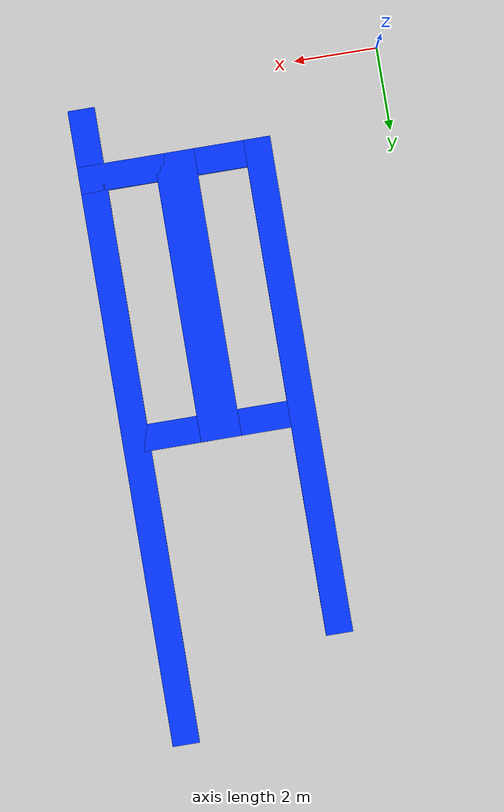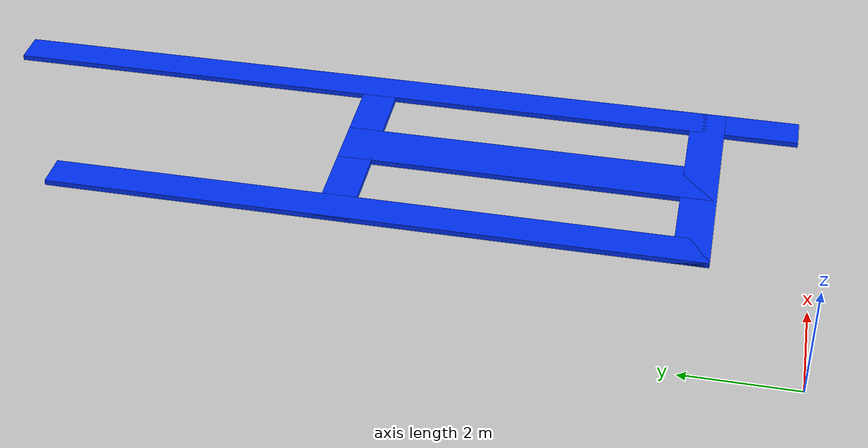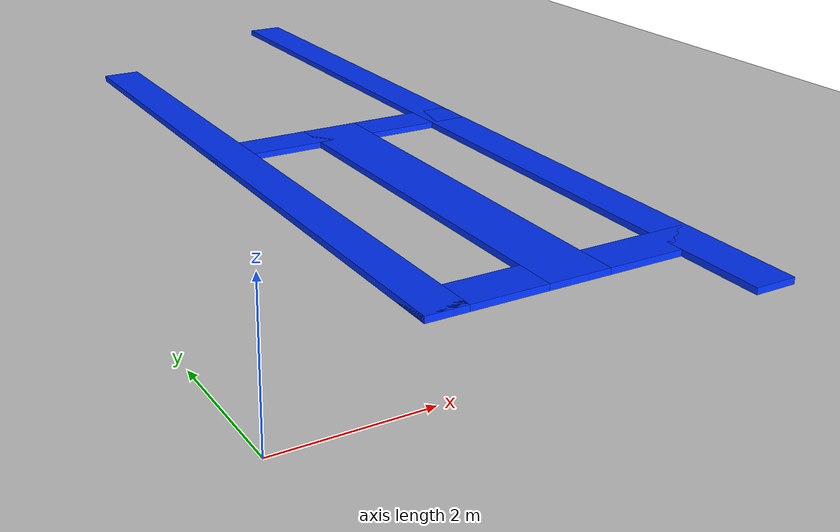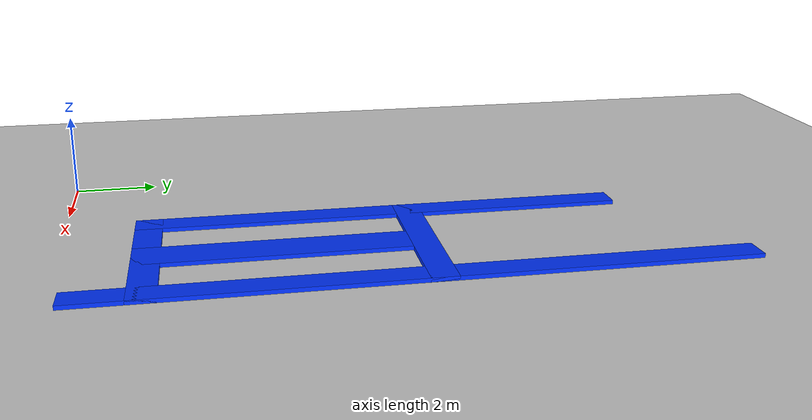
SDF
<?xml version="1.0" ?>
<sdf version="1.8">
    <world name="track_sim">
        <physics name="1ms" type="ignored">
        <max_step_size>0.001</max_step_size>
        <real_time_factor>1.0</real_time_factor>
        </physics>
        <plugin
        filename="libignition-gazebo-physics-system.so"
        name="ignition::gazebo::systems::Physics">
        </plugin>
        <plugin
        filename="libignition-gazebo-user-commands-system.so"
        name="ignition::gazebo::systems::UserCommands">
        </plugin>
        <plugin
        filename="libignition-gazebo-scene-broadcaster-system.so"
        name="ignition::gazebo::systems::SceneBroadcaster">
        </plugin>

        <light type="directional" name="sun">
        <cast_shadows>true</cast_shadows>
        <pose>0 0 10 0 0 0</pose>
        <diffuse>0.8 0.8 0.8 1</diffuse>
        <specular>0.2 0.2 0.2 1</specular>
        <attenuation>
            <range>1000</range>
            <constant>0.9</constant>
            <linear>0.01</linear>
            <quadratic>0.001</quadratic>
        </attenuation>
        <direction>-0.5 0.1 -0.9</direction>
        </light>

        <model name="ground_plane">
            <static>true</static>
            <link name="link">
                <collision name="collision">
                <geometry>
                    <plane>
                    <normal>0 0 1</normal>
                    </plane>
                </geometry>
                </collision>
                <visual name="visual">
                <geometry>
                    <plane>
                    <normal>0 0 1</normal>
                    <size>100 100</size>
                    </plane>
                </geometry>
                <material>
                    <ambient>0.8 0.8 0.8 1</ambient>
                    <diffuse>0.8 0.8 0.8 1</diffuse>
                    <specular>0.8 0.8 0.8 1</specular>
                </material>
                </visual>
            </link>
        </model>

        <!--Include tracks here-->
        <include>
            <name>road_network</name>
            <uri>file:///ros2_ws/install/em_sim_gazebo/share/em_sim_gazebo/worlds/road_network.sdf</uri>
        </include>

    </world>
</sdf>

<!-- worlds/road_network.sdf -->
<!-- |    This document was autogenerated by xacro from track_maker.xacro              | -->
<!-- |    EDITING THIS FILE BY HAND IS NOT RECOMMENDED                                 | -->
<sdf version="1.8">
  <model name="road_network">
    <link name="road_1">
      <collision name="collision">
        <geometry>
          <box>
            <size>
                0.6499999999999999 12.0 0.1
              </size>
          </box>
        </geometry>
        <pose>
            3.1950000000000003 7.67 0.05 0 0 0
          </pose>
      </collision>
      <visual name="visual">
        <geometry>
          <box>
            <size>
                0.6499999999999999 12.0 0.1
              </size>
          </box>
        </geometry>
        <pose>
            3.1950000000000003 7.67 0.05 0 0 0
          </pose>
        <material>
          <ambient>0.0 0.2 1.0 1</ambient>
          <diffuse>0.0 0.2 1.0 1</diffuse>
          <specular>0.0 0.2 1.0 1</specular>
        </material>
      </visual>
    </link>
    <joint name="road_1_weld_joint" type="fixed">
      <parent>world</parent>
      <child>road_1</child>
    </joint>
    <link name="road_2">
      <collision name="collision">
        <geometry>
          <box>
            <size>
                0.6499999999999995 15.37 0.1
              </size>
          </box>
        </geometry>
        <pose>
            7.225 7.985 0.05 0 0 0
          </pose>
      </collision>
      <visual name="visual">
        <geometry>
          <box>
            <size>
                0.6499999999999995 15.37 0.1
              </size>
          </box>
        </geometry>
        <pose>
            7.225 7.985 0.05 0 0 0
          </pose>
        <material>
          <ambient>0.0 0.2 1.0 1</ambient>
          <diffuse>0.0 0.2 1.0 1</diffuse>
          <specular>0.0 0.2 1.0 1</specular>
        </material>
      </visual>
    </link>
    <joint name="road_2_weld_joint" type="fixed">
      <parent>world</parent>
      <child>road_2</child>
    </joint>
    <link name="road_3">
      <collision name="collision">
        <geometry>
          <box>
            <size>
                0.9800000000000004 6.970000000000001 0.1
              </size>
          </box>
        </geometry>
        <pose>
            5.21 5.155 0.05 0 0 0
          </pose>
      </collision>
      <visual name="visual">
        <geometry>
          <box>
            <size>
                0.9800000000000004 6.970000000000001 0.1
              </size>
          </box>
        </geometry>
        <pose>
            5.21 5.155 0.05 0 0 0
          </pose>
        <material>
          <ambient>0.0 0.2 1.0 1</ambient>
          <diffuse>0.0 0.2 1.0 1</diffuse>
          <specular>0.0 0.2 1.0 1</specular>
        </material>
      </visual>
    </link>
    <joint name="road_3_weld_joint" type="fixed">
      <parent>world</parent>
      <child>road_3</child>
    </joint>
    <link name="road_4">
      <collision name="collision">
        <geometry>
          <box>
            <size>
                4.68 0.6400000000000006 0.1
              </size>
          </box>
        </geometry>
        <pose>
            5.21 8.32 0.05 0 0 0
          </pose>
      </collision>
      <visual name="visual">
        <geometry>
          <box>
            <size>
                4.68 0.6400000000000006 0.1
              </size>
          </box>
        </geometry>
        <pose>
            5.21 8.32 0.05 0 0 0
          </pose>
        <material>
          <ambient>0.0 0.2 1.0 1</ambient>
          <diffuse>0.0 0.2 1.0 1</diffuse>
          <specular>0.0 0.2 1.0 1</specular>
        </material>
      </visual>
    </link>
    <joint name="road_4_weld_joint" type="fixed">
      <parent>world</parent>
      <child>road_4</child>
    </joint>
    <link name="road_5">
      <collision name="collision">
        <geometry>
          <box>
            <size>
                4.68 0.6499999999999999 0.1
              </size>
          </box>
        </geometry>
        <pose>
            5.21 1.9949999999999999 0.05 0 0 0
          </pose>
      </collision>
      <visual name="visual">
        <geometry>
          <box>
            <size>
                4.68 0.6499999999999999 0.1
              </size>
          </box>
        </geometry>
        <pose>
            5.21 1.9949999999999999 0.05 0 0 0
          </pose>
        <material>
          <ambient>0.0 0.2 1.0 1</ambient>
          <diffuse>0.0 0.2 1.0 1</diffuse>
          <specular>0.0 0.2 1.0 1</specular>
        </material>
      </visual>
    </link>
    <joint name="road_5_weld_joint" type="fixed">
      <parent>world</parent>
      <child>road_5</child>
    </joint>
  </model>
</sdf>
